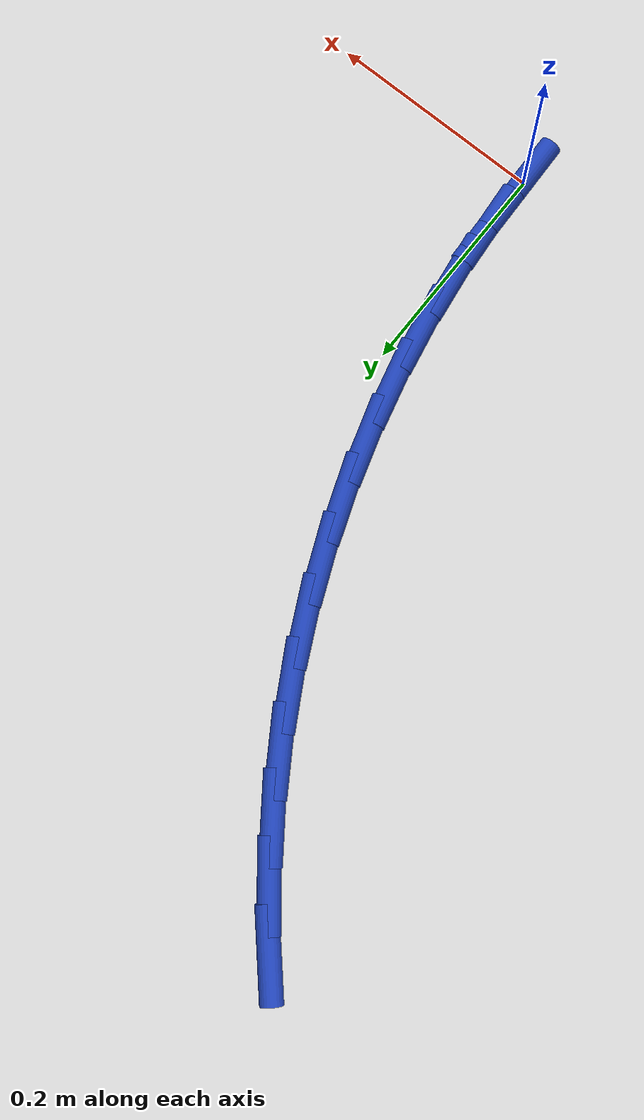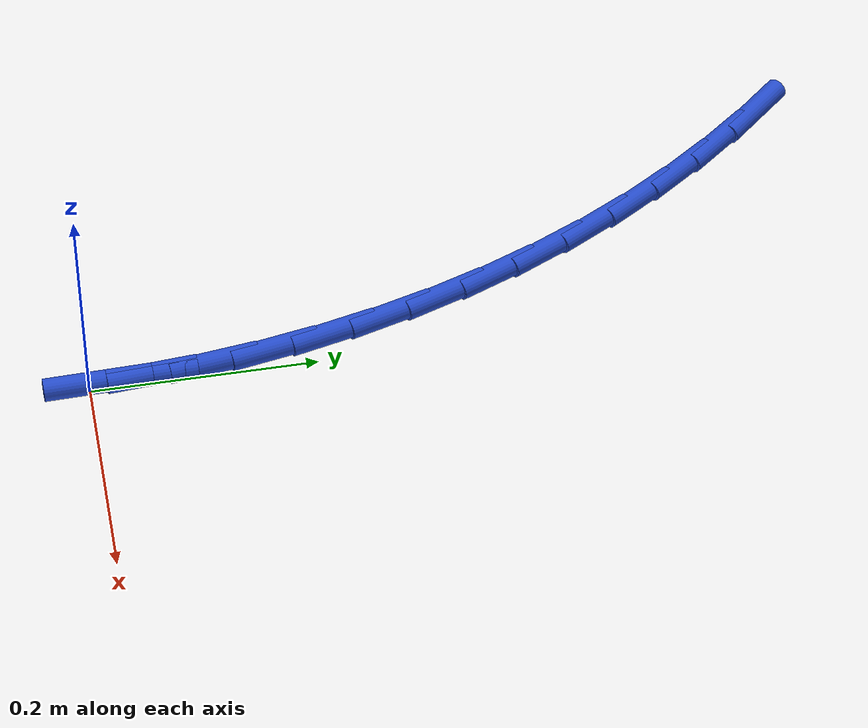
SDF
<sdf version="1.6">
 <world name="default">
  <model name="ground_plane">
   <static>1</static>
   <link name="link">
    <collision name="collision">
     <geometry><plane><normal>0 0 1</normal><size>100 100</size></plane></geometry>
     <surface><friction><ode><mu>100</mu><mu2>50</mu2></ode></friction></surface>
    </collision>
    <visual name="visual">
     <cast_shadows>0</cast_shadows>
     <geometry><plane><normal>0 0 1</normal><size>100 100</size></plane></geometry>
     <material>
      <script><uri>file://media/materials/scripts/gazebo.material</uri><name>Gazebo/WhiteGlow</name></script>
     </material>
    </visual>
   </link>
  </model>
  <model name="line">
   <link name="link_1">
    <pose>-0.0016304143597943128 0.054801118091646596 0.01 0 1.57 -1.4866815876140271</pose>
    <collision name="collision">
     <geometry><cylinder><radius>0.01</radius><length>0.08</length></cylinder></geometry>
    </collision>
    <visual name="visual">
     <material>
      <script><name>Gazebo/Blue</name><uri>file://media/materials/scripts/gazebo.material</uri></script>
     </material>
     <geometry><cylinder><radius>0.01</radius><length>0.08</length></cylinder></geometry>
    </visual>
   </link>
   <link name="link_2">
    <pose>-0.0062321764641706506 0.10938018584667866 0.01 0 1.57 -1.4327370504387602</pose>
    <collision name="collision">
     <geometry><cylinder><radius>0.01</radius><length>0.08</length></cylinder></geometry>
    </collision>
    <visual name="visual">
     <material>
      <script><name>Gazebo/Blue</name><uri>file://media/materials/scripts/gazebo.material</uri></script>
     </material>
     <geometry><cylinder><radius>0.01</radius><length>0.08</length></cylinder></geometry>
    </visual>
   </link>
   <link name="link_3">
    <pose>-0.013761718939755502 0.16357171261810557 0.01 0 1.57 -1.3790348877531258</pose>
    <collision name="collision">
     <geometry><cylinder><radius>0.01</radius><length>0.08</length></cylinder></geometry>
    </collision>
    <visual name="visual">
     <material>
      <script><name>Gazebo/Blue</name><uri>file://media/materials/scripts/gazebo.material</uri></script>
     </material>
     <geometry><cylinder><radius>0.01</radius><length>0.08</length></cylinder></geometry>
    </visual>
   </link>
   <link name="link_4">
    <pose>-0.02417547441317542 0.21721020775893674 0.01 0 1.57 -1.3253836190364077</pose>
    <collision name="collision">
     <geometry><cylinder><radius>0.01</radius><length>0.08</length></cylinder></geometry>
    </collision>
    <visual name="visual">
     <material>
      <script><name>Gazebo/Blue</name><uri>file://media/materials/scripts/gazebo.material</uri></script>
     </material>
     <geometry><cylinder><radius>0.01</radius><length>0.08</length></cylinder></geometry>
    </visual>
   </link>
   <link name="link_5">
    <pose>-0.0374298755110569 0.2701301806221815 0.01 0 1.57 -1.2715880519324152</pose>
    <collision name="collision">
     <geometry><cylinder><radius>0.01</radius><length>0.08</length></cylinder></geometry>
    </collision>
    <visual name="visual">
     <material>
      <script><name>Gazebo/Blue</name><uri>file://media/materials/scripts/gazebo.material</uri></script>
     </material>
     <geometry><cylinder><radius>0.01</radius><length>0.08</length></cylinder></geometry>
    </visual>
   </link>
   <link name="link_6">
    <pose>-0.0534813548600265 0.32216614056084947 0.01 0 1.57 -1.2174518607678222</pose>
    <collision name="collision">
     <geometry><cylinder><radius>0.01</radius><length>0.08</length></cylinder></geometry>
    </collision>
    <visual name="visual">
     <material>
      <script><name>Gazebo/Blue</name><uri>file://media/materials/scripts/gazebo.material</uri></script>
     </material>
     <geometry><cylinder><radius>0.01</radius><length>0.08</length></cylinder></geometry>
    </visual>
   </link>
   <link name="link_7">
    <pose>-0.07228634508671072 0.3731525969279498 0.01 0 1.57 -1.1627802858012077</pose>
    <collision name="collision">
     <geometry><cylinder><radius>0.01</radius><length>0.08</length></cylinder></geometry>
    </collision>
    <visual name="visual">
     <material>
      <script><name>Gazebo/Blue</name><uri>file://media/materials/scripts/gazebo.material</uri></script>
     </material>
     <geometry><cylinder><radius>0.01</radius><length>0.08</length></cylinder></geometry>
    </visual>
   </link>
   <link name="link_8">
    <pose>-0.09380127881773609 0.4229240590764918 0.01 0 1.57 -1.1073831489548371</pose>
    <collision name="collision">
     <geometry><cylinder><radius>0.01</radius><length>0.08</length></cylinder></geometry>
    </collision>
    <visual name="visual">
     <material>
      <script><name>Gazebo/Blue</name><uri>file://media/materials/scripts/gazebo.material</uri></script>
     </material>
     <geometry><cylinder><radius>0.01</radius><length>0.08</length></cylinder></geometry>
    </visual>
   </link>
   <link name="link_9">
    <pose>-0.1179825886797291 0.47131503635948485 0.01 0 1.57 -1.051105162011602</pose>
    <collision name="collision">
     <geometry><cylinder><radius>0.01</radius><length>0.08</length></cylinder></geometry>
    </collision>
    <visual name="visual">
     <material>
      <script><name>Gazebo/Blue</name><uri>file://media/materials/scripts/gazebo.material</uri></script>
     </material>
     <geometry><cylinder><radius>0.01</radius><length>0.08</length></cylinder></geometry>
    </visual>
   </link>
   <link name="link_10">
    <pose>-0.1447859023596868 0.5181615421350727 0.01 0 1.57 -0.9949119978230357</pose>
    <collision name="collision">
     <geometry><cylinder><radius>0.01</radius><length>0.08</length></cylinder></geometry>
    </collision>
    <visual name="visual">
     <material>
      <script><name>Gazebo/Blue</name><uri>file://media/materials/scripts/gazebo.material</uri></script>
     </material>
     <geometry><cylinder><radius>0.01</radius><length>0.08</length></cylinder></geometry>
    </visual>
   </link>
   <link name="link_11">
    <pose>-0.17413398845090278 0.563360985975239 0.01 0 1.57 -0.9403058622483925</pose>
    <collision name="collision">
     <geometry><cylinder><radius>0.01</radius><length>0.08</length></cylinder></geometry>
    </collision>
    <visual name="visual">
     <material>
      <script><name>Gazebo/Blue</name><uri>file://media/materials/scripts/gazebo.material</uri></script>
     </material>
     <geometry><cylinder><radius>0.01</radius><length>0.08</length></cylinder></geometry>
    </visual>
   </link>
   <link name="link_12">
    <pose>-0.20590600105353618 0.6068922698014301 0.01 0 1.57 -0.8874605588945225</pose>
    <collision name="collision">
     <geometry><cylinder><radius>0.01</radius><length>0.08</length></cylinder></geometry>
    </collision>
    <visual name="visual">
     <material>
      <script><name>Gazebo/Blue</name><uri>file://media/materials/scripts/gazebo.material</uri></script>
     </material>
     <geometry><cylinder><radius>0.01</radius><length>0.08</length></cylinder></geometry>
    </visual>
   </link>
   <link name="link_13">
    <pose>-0.23997808403636756 0.6487399200605596 0.01 0 1.57 -0.8364063295100826</pose>
    <collision name="collision">
     <geometry><cylinder><radius>0.01</radius><length>0.08</length></cylinder></geometry>
    </collision>
    <visual name="visual">
     <material>
      <script><name>Gazebo/Blue</name><uri>file://media/materials/scripts/gazebo.material</uri></script>
     </material>
     <geometry><cylinder><radius>0.01</radius><length>0.08</length></cylinder></geometry>
    </visual>
   </link>
   <link name="link_120">
    <pose>2.0816681711721685e-17 1.8041124150158794e-16 0.01 0 1.57 -1.540837070412342</pose>
    <collision name="collision">
     <geometry><cylinder><radius>0.01</radius><length>0.08</length></cylinder></geometry>
    </collision>
    <visual name="visual">
     <material>
      <script><name>Gazebo/Blue</name><uri>file://media/materials/scripts/gazebo.material</uri></script>
     </material>
     <geometry><cylinder><radius>0.01</radius><length>0.08</length></cylinder></geometry>
    </visual>
   </link>
   <link name="link_121">
    <pose>-0.0016421157151557605 0.05479523147319651 0.01 0 1.57 -1.5408370704123422</pose>
    <collision name="collision">
     <geometry><cylinder><radius>0.01</radius><length>0.08</length></cylinder></geometry>
    </collision>
    <visual name="visual">
     <material>
      <script><name>Gazebo/Blue</name><uri>file://media/materials/scripts/gazebo.material</uri></script>
     </material>
     <geometry><cylinder><radius>0.01</radius><length>0.08</length></cylinder></geometry>
    </visual>
   </link>
  </model>
 </world>
</sdf>
